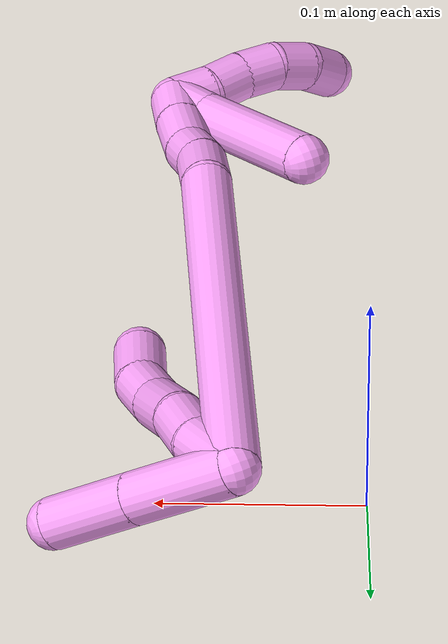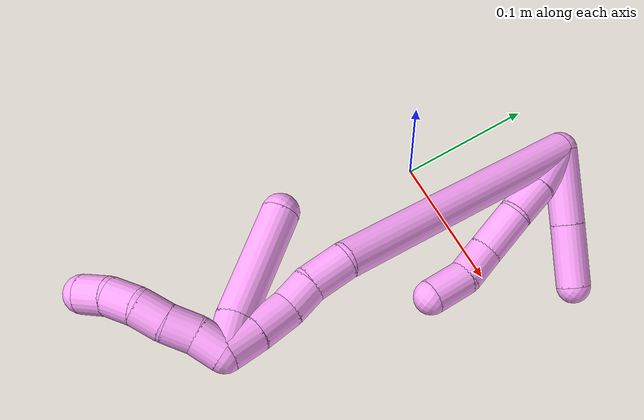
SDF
<sdf version="1.7">
 <world name="default">
  <model name="4">
   <static>0</static>
   <link name="4">
    <collision name="collision-cylinder-e_1_2_8">
     <pose>-0.005403 -0.016295 0.001364 1.48731 -0.319136 -0.293929</pose>
     <geometry><cylinder><radius>0.0125</radius><length>0.034444</length></cylinder></geometry>
     <surface>
      <friction><ode><mu>1.16</mu><mu2>1.16</mu2><slip1>0</slip1><slip2>0</slip2></ode></friction>
      <contact><ode><kp>1e+06</kp><kd>1</kd><max_vel>0</max_vel><min_depth>0.001</min_depth></ode></contact>
     </surface>
    </collision>
    <visual name="visual-cylinder-e_1_2_8">
     <pose>-0.005403 -0.016295 0.001364 1.48731 -0.319136 -0.293929</pose>
     <geometry><cylinder><radius>0.0125</radius><length>0.034444</length></cylinder></geometry>
     <material><ambient>1 0.65098 0.996078 1</ambient></material>
    </visual>
    <collision name="collision-cylinder-e_2_8_9">
     <pose>-0.015377 -0.045445 0.001488 1.6669 -0.34016 -0.373769</pose>
     <geometry><cylinder><radius>0.0125</radius><length>0.027397</length></cylinder></geometry>
     <surface>
      <friction><ode><mu>1.16</mu><mu2>1.16</mu2><slip1>0</slip1><slip2>0</slip2></ode></friction>
      <contact><ode><kp>1e+06</kp><kd>1</kd><max_vel>0</max_vel><min_depth>0.001</min_depth></ode></contact>
     </surface>
    </collision>
    <visual name="visual-cylinder-e_2_8_9">
     <pose>-0.015377 -0.045445 0.001488 1.6669 -0.34016 -0.373769</pose>
     <geometry><cylinder><radius>0.0125</radius><length>0.027397</length></cylinder></geometry>
     <material><ambient>1 0.65098 0.996078 1</ambient></material>
    </visual>
    <collision name="collision-cylinder-e_3_9_10">
     <pose>-0.022034 -0.075126 -0.000671 1.62538 -0.123212 -0.130109</pose>
     <geometry><cylinder><radius>0.0125</radius><length>0.033961</length></cylinder></geometry>
     <surface>
      <friction><ode><mu>1.16</mu><mu2>1.16</mu2><slip1>0</slip1><slip2>0</slip2></ode></friction>
      <contact><ode><kp>1e+06</kp><kd>1</kd><max_vel>0</max_vel><min_depth>0.001</min_depth></ode></contact>
     </surface>
    </collision>
    <visual name="visual-cylinder-e_3_9_10">
     <pose>-0.022034 -0.075126 -0.000671 1.62538 -0.123212 -0.130109</pose>
     <geometry><cylinder><radius>0.0125</radius><length>0.033961</length></cylinder></geometry>
     <material><ambient>1 0.65098 0.996078 1</ambient></material>
    </visual>
    <collision name="collision-cylinder-e_4_10_11">
     <pose>-0.028049 -0.103906 -0.002284 1.62883 -0.316975 -0.335582</pose>
     <geometry><cylinder><radius>0.0125</radius><length>0.025203</length></cylinder></geometry>
     <surface>
      <friction><ode><mu>1.16</mu><mu2>1.16</mu2><slip1>0</slip1><slip2>0</slip2></ode></friction>
      <contact><ode><kp>1e+06</kp><kd>1</kd><max_vel>0</max_vel><min_depth>0.001</min_depth></ode></contact>
     </surface>
    </collision>
    <visual name="visual-cylinder-e_4_10_11">
     <pose>-0.028049 -0.103906 -0.002284 1.62883 -0.316975 -0.335582</pose>
     <geometry><cylinder><radius>0.0125</radius><length>0.025203</length></cylinder></geometry>
     <material><ambient>1 0.65098 0.996078 1</ambient></material>
    </visual>
    <collision name="collision-cylinder-e_5_11_6">
     <pose>-0.03739 -0.128161 -0.008414 1.98685 -0.382691 -0.578092</pose>
     <geometry><cylinder><radius>0.0125</radius><length>0.028995</length></cylinder></geometry>
     <surface>
      <friction><ode><mu>1.16</mu><mu2>1.16</mu2><slip1>0</slip1><slip2>0</slip2></ode></friction>
      <contact><ode><kp>1e+06</kp><kd>1</kd><max_vel>0</max_vel><min_depth>0.001</min_depth></ode></contact>
     </surface>
    </collision>
    <visual name="visual-cylinder-e_5_11_6">
     <pose>-0.03739 -0.128161 -0.008414 1.98685 -0.382691 -0.578092</pose>
     <geometry><cylinder><radius>0.0125</radius><length>0.028995</length></cylinder></geometry>
     <material><ambient>1 0.65098 0.996078 1</ambient></material>
    </visual>
    <collision name="collision-cylinder-e_1_2_12">
     <pose>0.002106 -0.01984 0.018424 0.822379 0.077636 0.033867</pose>
     <geometry><cylinder><radius>0.0125</radius><length>0.054314</length></cylinder></geometry>
     <surface>
      <friction><ode><mu>1.16</mu><mu2>1.16</mu2><slip1>0</slip1><slip2>0</slip2></ode></friction>
      <contact><ode><kp>1e+06</kp><kd>1</kd><max_vel>0</max_vel><min_depth>0.001</min_depth></ode></contact>
     </surface>
    </collision>
    <visual name="visual-cylinder-e_1_2_12">
     <pose>0.002106 -0.01984 0.018424 0.822379 0.077636 0.033867</pose>
     <geometry><cylinder><radius>0.0125</radius><length>0.054314</length></cylinder></geometry>
     <material><ambient>1 0.65098 0.996078 1</ambient></material>
    </visual>
    <collision name="collision-cylinder-e_2_12_5">
     <pose>0.006127 -0.05646 0.052228 0.82892 0.083906 0.036932</pose>
     <geometry><cylinder><radius>0.0125</radius><length>0.045686</length></cylinder></geometry>
     <surface>
      <friction><ode><mu>1.16</mu><mu2>1.16</mu2><slip1>0</slip1><slip2>0</slip2></ode></friction>
      <contact><ode><kp>1e+06</kp><kd>1</kd><max_vel>0</max_vel><min_depth>0.001</min_depth></ode></contact>
     </surface>
    </collision>
    <visual name="visual-cylinder-e_2_12_5">
     <pose>0.006127 -0.05646 0.052228 0.82892 0.083906 0.036932</pose>
     <geometry><cylinder><radius>0.0125</radius><length>0.045686</length></cylinder></geometry>
     <material><ambient>1 0.65098 0.996078 1</ambient></material>
    </visual>
    <collision name="collision-cylinder-e_1_2_13">
     <pose>-0.053855 -0.076743 -0.037632 2.0267 -0.562244 -0.867586</pose>
     <geometry><cylinder><radius>0.0125</radius><length>0.202049</length></cylinder></geometry>
     <surface>
      <friction><ode><mu>1.16</mu><mu2>1.16</mu2><slip1>0</slip1><slip2>0</slip2></ode></friction>
      <contact><ode><kp>1e+06</kp><kd>1</kd><max_vel>0</max_vel><min_depth>0.001</min_depth></ode></contact>
     </surface>
    </collision>
    <visual name="visual-cylinder-e_1_2_13">
     <pose>-0.053855 -0.076743 -0.037632 2.0267 -0.562244 -0.867586</pose>
     <geometry><cylinder><radius>0.0125</radius><length>0.202049</length></cylinder></geometry>
     <material><ambient>1 0.65098 0.996078 1</ambient></material>
    </visual>
    <collision name="collision-cylinder-e_2_13_14">
     <pose>-0.111878 -0.166002 -0.079624 1.90605 -0.304714 -0.425648</pose>
     <geometry><cylinder><radius>0.0125</radius><length>0.02779</length></cylinder></geometry>
     <surface>
      <friction><ode><mu>1.16</mu><mu2>1.16</mu2><slip1>0</slip1><slip2>0</slip2></ode></friction>
      <contact><ode><kp>1e+06</kp><kd>1</kd><max_vel>0</max_vel><min_depth>0.001</min_depth></ode></contact>
     </surface>
    </collision>
    <visual name="visual-cylinder-e_2_13_14">
     <pose>-0.111878 -0.166002 -0.079624 1.90605 -0.304714 -0.425648</pose>
     <geometry><cylinder><radius>0.0125</radius><length>0.02779</length></cylinder></geometry>
     <material><ambient>1 0.65098 0.996078 1</ambient></material>
    </visual>
    <collision name="collision-cylinder-e_3_14_15">
     <pose>-0.119015 -0.188351 -0.085018 1.67547 -0.291727 -0.323448</pose>
     <geometry><cylinder><radius>0.0125</radius><length>0.020644</length></cylinder></geometry>
     <surface>
      <friction><ode><mu>1.16</mu><mu2>1.16</mu2><slip1>0</slip1><slip2>0</slip2></ode></friction>
      <contact><ode><kp>1e+06</kp><kd>1</kd><max_vel>0</max_vel><min_depth>0.001</min_depth></ode></contact>
     </surface>
    </collision>
    <visual name="visual-cylinder-e_3_14_15">
     <pose>-0.119015 -0.188351 -0.085018 1.67547 -0.291727 -0.323448</pose>
     <geometry><cylinder><radius>0.0125</radius><length>0.020644</length></cylinder></geometry>
     <material><ambient>1 0.65098 0.996078 1</ambient></material>
    </visual>
    <collision name="collision-cylinder-e_4_15_16">
     <pose>-0.127961 -0.209367 -0.08925 1.84938 -0.474648 -0.620796</pose>
     <geometry><cylinder><radius>0.0125</radius><length>0.026158</length></cylinder></geometry>
     <surface>
      <friction><ode><mu>1.16</mu><mu2>1.16</mu2><slip1>0</slip1><slip2>0</slip2></ode></friction>
      <contact><ode><kp>1e+06</kp><kd>1</kd><max_vel>0</max_vel><min_depth>0.001</min_depth></ode></contact>
     </surface>
    </collision>
    <visual name="visual-cylinder-e_4_15_16">
     <pose>-0.127961 -0.209367 -0.08925 1.84938 -0.474648 -0.620796</pose>
     <geometry><cylinder><radius>0.0125</radius><length>0.026158</length></cylinder></geometry>
     <material><ambient>1 0.65098 0.996078 1</ambient></material>
    </visual>
    <collision name="collision-cylinder-e_5_16_1">
     <pose>-0.139261 -0.230327 -0.095992 1.9185 -0.473068 -0.662196</pose>
     <geometry><cylinder><radius>0.0125</radius><length>0.02336</length></cylinder></geometry>
     <surface>
      <friction><ode><mu>1.16</mu><mu2>1.16</mu2><slip1>0</slip1><slip2>0</slip2></ode></friction>
      <contact><ode><kp>1e+06</kp><kd>1</kd><max_vel>0</max_vel><min_depth>0.001</min_depth></ode></contact>
     </surface>
    </collision>
    <visual name="visual-cylinder-e_5_16_1">
     <pose>-0.139261 -0.230327 -0.095992 1.9185 -0.473068 -0.662196</pose>
     <geometry><cylinder><radius>0.0125</radius><length>0.02336</length></cylinder></geometry>
     <material><ambient>1 0.65098 0.996078 1</ambient></material>
    </visual>
    <collision name="collision-cylinder-e_1_1_17">
     <pose>-0.138527 -0.230722 -0.103755 -1.99364 0.532075 -0.79769</pose>
     <geometry><cylinder><radius>0.0125</radius><length>0.023871</length></cylinder></geometry>
     <surface>
      <friction><ode><mu>1.16</mu><mu2>1.16</mu2><slip1>0</slip1><slip2>0</slip2></ode></friction>
      <contact><ode><kp>1e+06</kp><kd>1</kd><max_vel>0</max_vel><min_depth>0.001</min_depth></ode></contact>
     </surface>
    </collision>
    <visual name="visual-cylinder-e_1_1_17">
     <pose>-0.138527 -0.230722 -0.103755 -1.99364 0.532075 -0.79769</pose>
     <geometry><cylinder><radius>0.0125</radius><length>0.023871</length></cylinder></geometry>
     <material><ambient>1 0.65098 0.996078 1</ambient></material>
    </visual>
    <collision name="collision-cylinder-e_2_17_4">
     <pose>-0.117948 -0.187409 -0.117275 -1.83827 0.391473 -0.508584</pose>
     <geometry><cylinder><radius>0.0125</radius><length>0.076129</length></cylinder></geometry>
     <surface>
      <friction><ode><mu>1.16</mu><mu2>1.16</mu2><slip1>0</slip1><slip2>0</slip2></ode></friction>
      <contact><ode><kp>1e+06</kp><kd>1</kd><max_vel>0</max_vel><min_depth>0.001</min_depth></ode></contact>
     </surface>
    </collision>
    <visual name="visual-cylinder-e_2_17_4">
     <pose>-0.117948 -0.187409 -0.117275 -1.83827 0.391473 -0.508584</pose>
     <geometry><cylinder><radius>0.0125</radius><length>0.076129</length></cylinder></geometry>
     <material><ambient>1 0.65098 0.996078 1</ambient></material>
    </visual>
    <collision name="collision-cylinder-e_1_1_18">
     <pose>-0.144405 -0.240762 -0.109511 3.07553 0.017767 0.52528</pose>
     <geometry><cylinder><radius>0.0125</radius><length>0.02</length></cylinder></geometry>
     <surface>
      <friction><ode><mu>1.16</mu><mu2>1.16</mu2><slip1>0</slip1><slip2>0</slip2></ode></friction>
      <contact><ode><kp>1e+06</kp><kd>1</kd><max_vel>0</max_vel><min_depth>0.001</min_depth></ode></contact>
     </surface>
    </collision>
    <visual name="visual-cylinder-e_1_1_18">
     <pose>-0.144405 -0.240762 -0.109511 3.07553 0.017767 0.52528</pose>
     <geometry><cylinder><radius>0.0125</radius><length>0.02</length></cylinder></geometry>
     <material><ambient>1 0.65098 0.996078 1</ambient></material>
    </visual>
    <collision name="collision-cylinder-e_2_18_19">
     <pose>-0.144957 -0.243957 -0.129133 2.88457 -0.073127 -0.55172</pose>
     <geometry><cylinder><radius>0.0125</radius><length>0.02</length></cylinder></geometry>
     <surface>
      <friction><ode><mu>1.16</mu><mu2>1.16</mu2><slip1>0</slip1><slip2>0</slip2></ode></friction>
      <contact><ode><kp>1e+06</kp><kd>1</kd><max_vel>0</max_vel><min_depth>0.001</min_depth></ode></contact>
     </surface>
    </collision>
    <visual name="visual-cylinder-e_2_18_19">
     <pose>-0.144957 -0.243957 -0.129133 2.88457 -0.073127 -0.55172</pose>
     <geometry><cylinder><radius>0.0125</radius><length>0.02</length></cylinder></geometry>
     <material><ambient>1 0.65098 0.996078 1</ambient></material>
    </visual>
    <collision name="collision-cylinder-e_3_19_20">
     <pose>-0.145254 -0.24775 -0.14869 3.01539 0.043393 0.66162</pose>
     <geometry><cylinder><radius>0.0125</radius><length>0.02</length></cylinder></geometry>
     <surface>
      <friction><ode><mu>1.16</mu><mu2>1.16</mu2><slip1>0</slip1><slip2>0</slip2></ode></friction>
      <contact><ode><kp>1e+06</kp><kd>1</kd><max_vel>0</max_vel><min_depth>0.001</min_depth></ode></contact>
     </surface>
    </collision>
    <visual name="visual-cylinder-e_3_19_20">
     <pose>-0.145254 -0.24775 -0.14869 3.01539 0.043393 0.66162</pose>
     <geometry><cylinder><radius>0.0125</radius><length>0.02</length></cylinder></geometry>
     <material><ambient>1 0.65098 0.996078 1</ambient></material>
    </visual>
    <collision name="collision-cylinder-e_4_20_21">
     <pose>-0.142035 -0.25202 -0.167721 2.82251 0.282316 1.44683</pose>
     <geometry><cylinder><radius>0.0125</radius><length>0.02</length></cylinder></geometry>
     <surface>
      <friction><ode><mu>1.16</mu><mu2>1.16</mu2><slip1>0</slip1><slip2>0</slip2></ode></friction>
      <contact><ode><kp>1e+06</kp><kd>1</kd><max_vel>0</max_vel><min_depth>0.001</min_depth></ode></contact>
     </surface>
    </collision>
    <visual name="visual-cylinder-e_4_20_21">
     <pose>-0.142035 -0.25202 -0.167721 2.82251 0.282316 1.44683</pose>
     <geometry><cylinder><radius>0.0125</radius><length>0.02</length></cylinder></geometry>
     <material><ambient>1 0.65098 0.996078 1</ambient></material>
    </visual>
    <collision name="collision-cylinder-e_5_21_3">
     <pose>-0.135102 -0.260059 -0.184426 2.55645 0.427656 1.24924</pose>
     <geometry><cylinder><radius>0.0125</radius><length>0.02</length></cylinder></geometry>
     <surface>
      <friction><ode><mu>1.16</mu><mu2>1.16</mu2><slip1>0</slip1><slip2>0</slip2></ode></friction>
      <contact><ode><kp>1e+06</kp><kd>1</kd><max_vel>0</max_vel><min_depth>0.001</min_depth></ode></contact>
     </surface>
    </collision>
    <visual name="visual-cylinder-e_5_21_3">
     <pose>-0.135102 -0.260059 -0.184426 2.55645 0.427656 1.24924</pose>
     <geometry><cylinder><radius>0.0125</radius><length>0.02</length></cylinder></geometry>
     <material><ambient>1 0.65098 0.996078 1</ambient></material>
    </visual>
    <collision name="collision-sphere-3">
     <pose>-0.130954 -0.265084 -0.192011 0 -0 0</pose>
     <geometry><sphere><radius>0.0125</radius></sphere></geometry>
     <surface>
      <friction><ode><mu>1.16</mu><mu2>1.16</mu2><slip1>0</slip1><slip2>0</slip2></ode></friction>
      <contact><ode><kp>1e+06</kp><kd>1</kd><max_vel>0</max_vel><min_depth>0.001</min_depth></ode></contact>
     </surface>
    </collision>
    <visual name="visual-sphere-3">
     <pose>-0.130954 -0.265084 -0.192011 0 -0 0</pose>
     <geometry><sphere><radius>0.0125</radius></sphere></geometry>
     <material><ambient>1 0.65098 0.996078 1</ambient></material>
    </visual>
    <collision name="collision-sphere-21">
     <pose>-0.139249 -0.255033 -0.17684 0 -0 0</pose>
     <geometry><sphere><radius>0.0125</radius></sphere></geometry>
     <surface>
      <friction><ode><mu>1.16</mu><mu2>1.16</mu2><slip1>0</slip1><slip2>0</slip2></ode></friction>
      <contact><ode><kp>1e+06</kp><kd>1</kd><max_vel>0</max_vel><min_depth>0.001</min_depth></ode></contact>
     </surface>
    </collision>
    <visual name="visual-sphere-21">
     <pose>-0.139249 -0.255033 -0.17684 0 -0 0</pose>
     <geometry><sphere><radius>0.0125</radius></sphere></geometry>
     <material><ambient>1 0.65098 0.996078 1</ambient></material>
    </visual>
    <collision name="collision-sphere-20">
     <pose>-0.144821 -0.249007 -0.158601 0 -0 0</pose>
     <geometry><sphere><radius>0.0125</radius></sphere></geometry>
     <surface>
      <friction><ode><mu>1.16</mu><mu2>1.16</mu2><slip1>0</slip1><slip2>0</slip2></ode></friction>
      <contact><ode><kp>1e+06</kp><kd>1</kd><max_vel>0</max_vel><min_depth>0.001</min_depth></ode></contact>
     </surface>
    </collision>
    <visual name="visual-sphere-20">
     <pose>-0.144821 -0.249007 -0.158601 0 -0 0</pose>
     <geometry><sphere><radius>0.0125</radius></sphere></geometry>
     <material><ambient>1 0.65098 0.996078 1</ambient></material>
    </visual>
    <collision name="collision-sphere-19">
     <pose>-0.145688 -0.246492 -0.138779 0 -0 0</pose>
     <geometry><sphere><radius>0.0125</radius></sphere></geometry>
     <surface>
      <friction><ode><mu>1.16</mu><mu2>1.16</mu2><slip1>0</slip1><slip2>0</slip2></ode></friction>
      <contact><ode><kp>1e+06</kp><kd>1</kd><max_vel>0</max_vel><min_depth>0.001</min_depth></ode></contact>
     </surface>
    </collision>
    <visual name="visual-sphere-19">
     <pose>-0.145688 -0.246492 -0.138779 0 -0 0</pose>
     <geometry><sphere><radius>0.0125</radius></sphere></geometry>
     <material><ambient>1 0.65098 0.996078 1</ambient></material>
    </visual>
    <collision name="collision-sphere-6">
     <pose>-0.042804 -0.140462 -0.01385 0 -0 0</pose>
     <geometry><sphere><radius>0.0125</radius></sphere></geometry>
     <surface>
      <friction><ode><mu>1.16</mu><mu2>1.16</mu2><slip1>0</slip1><slip2>0</slip2></ode></friction>
      <contact><ode><kp>1e+06</kp><kd>1</kd><max_vel>0</max_vel><min_depth>0.001</min_depth></ode></contact>
     </surface>
    </collision>
    <visual name="visual-sphere-6">
     <pose>-0.042804 -0.140462 -0.01385 0 -0 0</pose>
     <geometry><sphere><radius>0.0125</radius></sphere></geometry>
     <material><ambient>1 0.65098 0.996078 1</ambient></material>
    </visual>
    <collision name="collision-sphere-11">
     <pose>-0.031977 -0.115859 -0.002979 0 -0 0</pose>
     <geometry><sphere><radius>0.0125</radius></sphere></geometry>
     <surface>
      <friction><ode><mu>1.16</mu><mu2>1.16</mu2><slip1>0</slip1><slip2>0</slip2></ode></friction>
      <contact><ode><kp>1e+06</kp><kd>1</kd><max_vel>0</max_vel><min_depth>0.001</min_depth></ode></contact>
     </surface>
    </collision>
    <visual name="visual-sphere-11">
     <pose>-0.031977 -0.115859 -0.002979 0 -0 0</pose>
     <geometry><sphere><radius>0.0125</radius></sphere></geometry>
     <material><ambient>1 0.65098 0.996078 1</ambient></material>
    </visual>
    <collision name="collision-sphere-10">
     <pose>-0.024121 -0.091952 -0.00159 0 -0 0</pose>
     <geometry><sphere><radius>0.0125</radius></sphere></geometry>
     <surface>
      <friction><ode><mu>1.16</mu><mu2>1.16</mu2><slip1>0</slip1><slip2>0</slip2></ode></friction>
      <contact><ode><kp>1e+06</kp><kd>1</kd><max_vel>0</max_vel><min_depth>0.001</min_depth></ode></contact>
     </surface>
    </collision>
    <visual name="visual-sphere-10">
     <pose>-0.024121 -0.091952 -0.00159 0 -0 0</pose>
     <geometry><sphere><radius>0.0125</radius></sphere></geometry>
     <material><ambient>1 0.65098 0.996078 1</ambient></material>
    </visual>
    <collision name="collision-sphere-9">
     <pose>-0.019947 -0.058299 0.000249 0 -0 0</pose>
     <geometry><sphere><radius>0.0125</radius></sphere></geometry>
     <surface>
      <friction><ode><mu>1.16</mu><mu2>1.16</mu2><slip1>0</slip1><slip2>0</slip2></ode></friction>
      <contact><ode><kp>1e+06</kp><kd>1</kd><max_vel>0</max_vel><min_depth>0.001</min_depth></ode></contact>
     </surface>
    </collision>
    <visual name="visual-sphere-9">
     <pose>-0.019947 -0.058299 0.000249 0 -0 0</pose>
     <geometry><sphere><radius>0.0125</radius></sphere></geometry>
     <material><ambient>1 0.65098 0.996078 1</ambient></material>
    </visual>
    <collision name="collision-sphere-2">
     <geometry><sphere><radius>0.0125</radius></sphere></geometry>
     <surface>
      <friction><ode><mu>1.16</mu><mu2>1.16</mu2><slip1>0</slip1><slip2>0</slip2></ode></friction>
      <contact><ode><kp>1e+06</kp><kd>1</kd><max_vel>0</max_vel><min_depth>0.001</min_depth></ode></contact>
     </surface>
    </collision>
    <visual name="visual-sphere-2">
     <geometry><sphere><radius>0.0125</radius></sphere></geometry>
     <material><ambient>1 0.65098 0.996078 1</ambient></material>
    </visual>
    <collision name="collision-sphere-8">
     <pose>-0.010807 -0.032591 0.002727 0 -0 0</pose>
     <geometry><sphere><radius>0.0125</radius></sphere></geometry>
     <surface>
      <friction><ode><mu>1.16</mu><mu2>1.16</mu2><slip1>0</slip1><slip2>0</slip2></ode></friction>
      <contact><ode><kp>1e+06</kp><kd>1</kd><max_vel>0</max_vel><min_depth>0.001</min_depth></ode></contact>
     </surface>
    </collision>
    <visual name="visual-sphere-8">
     <pose>-0.010807 -0.032591 0.002727 0 -0 0</pose>
     <geometry><sphere><radius>0.0125</radius></sphere></geometry>
     <material><ambient>1 0.65098 0.996078 1</ambient></material>
    </visual>
    <collision name="collision-sphere-12">
     <pose>0.004213 -0.03968 0.036848 0 -0 0</pose>
     <geometry><sphere><radius>0.0125</radius></sphere></geometry>
     <surface>
      <friction><ode><mu>1.16</mu><mu2>1.16</mu2><slip1>0</slip1><slip2>0</slip2></ode></friction>
      <contact><ode><kp>1e+06</kp><kd>1</kd><max_vel>0</max_vel><min_depth>0.001</min_depth></ode></contact>
     </surface>
    </collision>
    <visual name="visual-sphere-12">
     <pose>0.004213 -0.03968 0.036848 0 -0 0</pose>
     <geometry><sphere><radius>0.0125</radius></sphere></geometry>
     <material><ambient>1 0.65098 0.996078 1</ambient></material>
    </visual>
    <collision name="collision-sphere-5">
     <pose>0.008041 -0.073241 0.067608 0 -0 0</pose>
     <geometry><sphere><radius>0.0125</radius></sphere></geometry>
     <surface>
      <friction><ode><mu>1.16</mu><mu2>1.16</mu2><slip1>0</slip1><slip2>0</slip2></ode></friction>
      <contact><ode><kp>1e+06</kp><kd>1</kd><max_vel>0</max_vel><min_depth>0.001</min_depth></ode></contact>
     </surface>
    </collision>
    <visual name="visual-sphere-5">
     <pose>0.008041 -0.073241 0.067608 0 -0 0</pose>
     <geometry><sphere><radius>0.0125</radius></sphere></geometry>
     <material><ambient>1 0.65098 0.996078 1</ambient></material>
    </visual>
    <collision name="collision-sphere-13">
     <pose>-0.107709 -0.153485 -0.075263 0 -0 0</pose>
     <geometry><sphere><radius>0.0125</radius></sphere></geometry>
     <surface>
      <friction><ode><mu>1.16</mu><mu2>1.16</mu2><slip1>0</slip1><slip2>0</slip2></ode></friction>
      <contact><ode><kp>1e+06</kp><kd>1</kd><max_vel>0</max_vel><min_depth>0.001</min_depth></ode></contact>
     </surface>
    </collision>
    <visual name="visual-sphere-13">
     <pose>-0.107709 -0.153485 -0.075263 0 -0 0</pose>
     <geometry><sphere><radius>0.0125</radius></sphere></geometry>
     <material><ambient>1 0.65098 0.996078 1</ambient></material>
    </visual>
    <collision name="collision-sphere-14">
     <pose>-0.116047 -0.178519 -0.083985 0 -0 0</pose>
     <geometry><sphere><radius>0.0125</radius></sphere></geometry>
     <surface>
      <friction><ode><mu>1.16</mu><mu2>1.16</mu2><slip1>0</slip1><slip2>0</slip2></ode></friction>
      <contact><ode><kp>1e+06</kp><kd>1</kd><max_vel>0</max_vel><min_depth>0.001</min_depth></ode></contact>
     </surface>
    </collision>
    <visual name="visual-sphere-14">
     <pose>-0.116047 -0.178519 -0.083985 0 -0 0</pose>
     <geometry><sphere><radius>0.0125</radius></sphere></geometry>
     <material><ambient>1 0.65098 0.996078 1</ambient></material>
    </visual>
    <collision name="collision-sphere-15">
     <pose>-0.121984 -0.198182 -0.086051 0 -0 0</pose>
     <geometry><sphere><radius>0.0125</radius></sphere></geometry>
     <surface>
      <friction><ode><mu>1.16</mu><mu2>1.16</mu2><slip1>0</slip1><slip2>0</slip2></ode></friction>
      <contact><ode><kp>1e+06</kp><kd>1</kd><max_vel>0</max_vel><min_depth>0.001</min_depth></ode></contact>
     </surface>
    </collision>
    <visual name="visual-sphere-15">
     <pose>-0.121984 -0.198182 -0.086051 0 -0 0</pose>
     <geometry><sphere><radius>0.0125</radius></sphere></geometry>
     <material><ambient>1 0.65098 0.996078 1</ambient></material>
    </visual>
    <collision name="collision-sphere-16">
     <pose>-0.133939 -0.220552 -0.092449 0 -0 0</pose>
     <geometry><sphere><radius>0.0125</radius></sphere></geometry>
     <surface>
      <friction><ode><mu>1.16</mu><mu2>1.16</mu2><slip1>0</slip1><slip2>0</slip2></ode></friction>
      <contact><ode><kp>1e+06</kp><kd>1</kd><max_vel>0</max_vel><min_depth>0.001</min_depth></ode></contact>
     </surface>
    </collision>
    <visual name="visual-sphere-16">
     <pose>-0.133939 -0.220552 -0.092449 0 -0 0</pose>
     <geometry><sphere><radius>0.0125</radius></sphere></geometry>
     <material><ambient>1 0.65098 0.996078 1</ambient></material>
    </visual>
    <collision name="collision-sphere-1">
     <pose>-0.144582 -0.240102 -0.099534 0 -0 0</pose>
     <geometry><sphere><radius>0.0125</radius></sphere></geometry>
     <surface>
      <friction><ode><mu>1.16</mu><mu2>1.16</mu2><slip1>0</slip1><slip2>0</slip2></ode></friction>
      <contact><ode><kp>1e+06</kp><kd>1</kd><max_vel>0</max_vel><min_depth>0.001</min_depth></ode></contact>
     </surface>
    </collision>
    <visual name="visual-sphere-1">
     <pose>-0.144582 -0.240102 -0.099534 0 -0 0</pose>
     <geometry><sphere><radius>0.0125</radius></sphere></geometry>
     <material><ambient>1 0.65098 0.996078 1</ambient></material>
    </visual>
    <collision name="collision-sphere-18">
     <pose>-0.144227 -0.241422 -0.119488 0 -0 0</pose>
     <geometry><sphere><radius>0.0125</radius></sphere></geometry>
     <surface>
      <friction><ode><mu>1.16</mu><mu2>1.16</mu2><slip1>0</slip1><slip2>0</slip2></ode></friction>
      <contact><ode><kp>1e+06</kp><kd>1</kd><max_vel>0</max_vel><min_depth>0.001</min_depth></ode></contact>
     </surface>
    </collision>
    <visual name="visual-sphere-18">
     <pose>-0.144227 -0.241422 -0.119488 0 -0 0</pose>
     <geometry><sphere><radius>0.0125</radius></sphere></geometry>
     <material><ambient>1 0.65098 0.996078 1</ambient></material>
    </visual>
    <collision name="collision-sphere-17">
     <pose>-0.132472 -0.221343 -0.107976 0 -0 0</pose>
     <geometry><sphere><radius>0.0125</radius></sphere></geometry>
     <surface>
      <friction><ode><mu>1.16</mu><mu2>1.16</mu2><slip1>0</slip1><slip2>0</slip2></ode></friction>
      <contact><ode><kp>1e+06</kp><kd>1</kd><max_vel>0</max_vel><min_depth>0.001</min_depth></ode></contact>
     </surface>
    </collision>
    <visual name="visual-sphere-17">
     <pose>-0.132472 -0.221343 -0.107976 0 -0 0</pose>
     <geometry><sphere><radius>0.0125</radius></sphere></geometry>
     <material><ambient>1 0.65098 0.996078 1</ambient></material>
    </visual>
    <collision name="collision-sphere-4">
     <pose>-0.103425 -0.153475 -0.126574 0 -0 0</pose>
     <geometry><sphere><radius>0.0125</radius></sphere></geometry>
     <surface>
      <friction><ode><mu>1.16</mu><mu2>1.16</mu2><slip1>0</slip1><slip2>0</slip2></ode></friction>
      <contact><ode><kp>1e+06</kp><kd>1</kd><max_vel>0</max_vel><min_depth>0.001</min_depth></ode></contact>
     </surface>
    </collision>
    <visual name="visual-sphere-4">
     <pose>-0.103425 -0.153475 -0.126574 0 -0 0</pose>
     <geometry><sphere><radius>0.0125</radius></sphere></geometry>
     <material><ambient>1 0.65098 0.996078 1</ambient></material>
    </visual>
    <inertial>
     <pose>-0.069762 -0.125173 -0.052256 0 -0 0</pose>
     <mass>0.75</mass>
     <inertia>
      <ixx>-1.6e-05</ixx>
      <ixy>0</ixy>
      <ixz>0</ixz>
      <iyy>-0.000436</iyy>
      <iyz>0</iyz>
      <izz>0.000882</izz>
     </inertia>
    </inertial>
   </link>
   <pose>0.060842 0.086416 0.05596 2.15125 1.19245 2.54555</pose>
  </model>
 </world>
</sdf>
